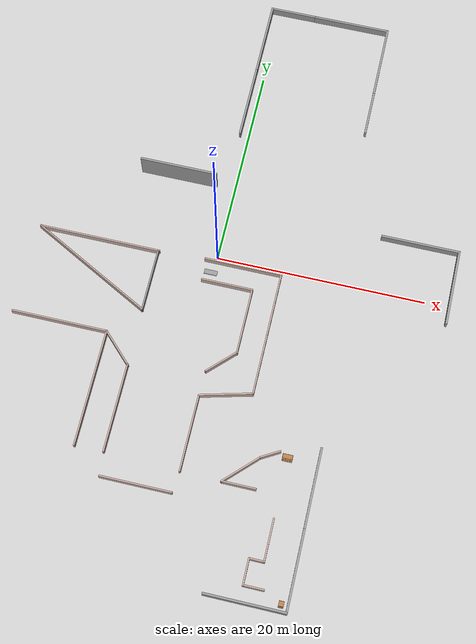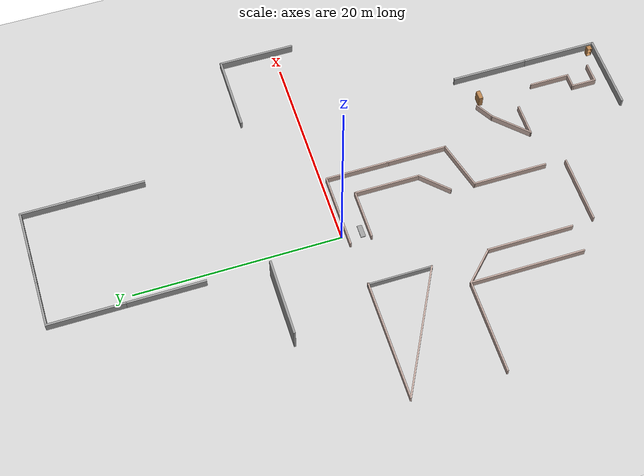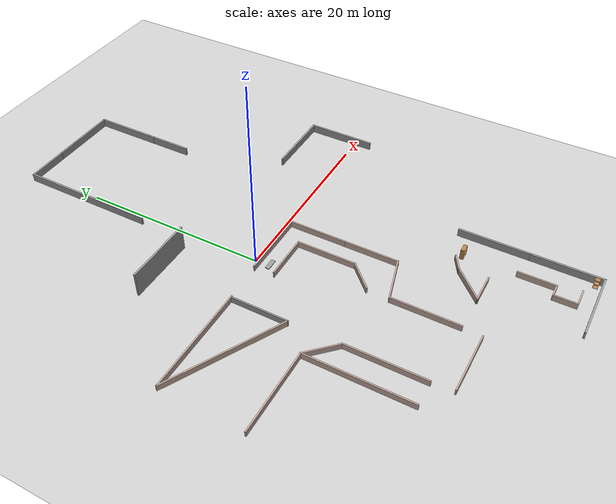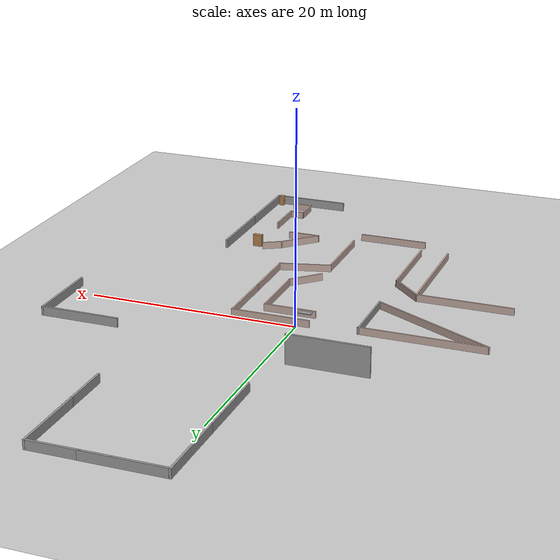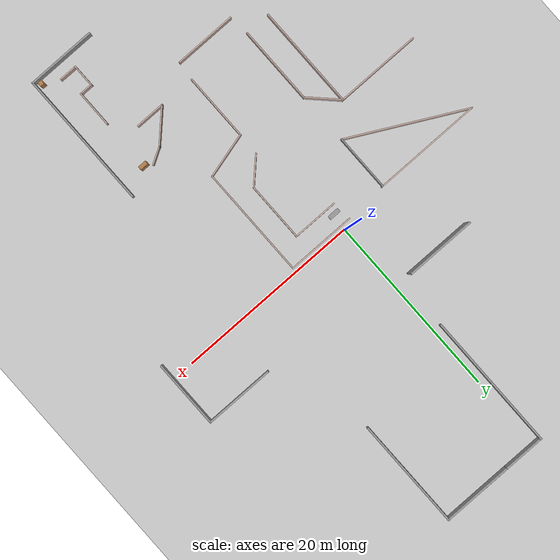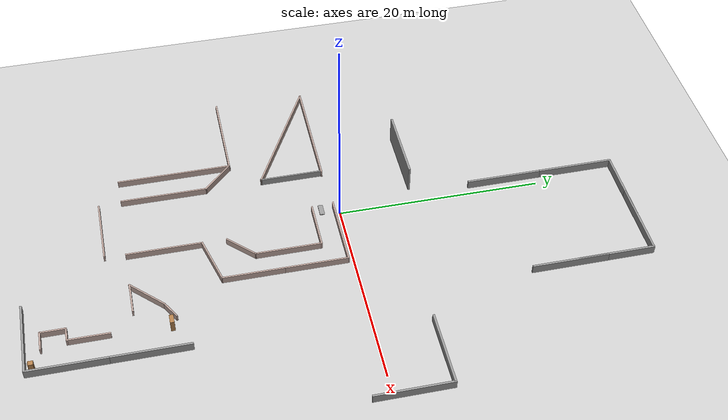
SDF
<sdf version="1.6">
 <world name="default">
  <light name="sun" type="directional">
   <pose>0 0 10 0 -0 0</pose>
   <diffuse>0.8 0.8 0.8 1</diffuse>
   <specular>0.2 0.2 0.2 1</specular>
   <attenuation>
    <range>1000</range>
    <constant>0.9</constant>
    <linear>0.01</linear>
    <quadratic>0.001</quadratic>
   </attenuation>
   <direction>-0.5 0.1 -0.9</direction>
  </light>
  <model name="ground_plane">
   <static>1</static>
   <link name="link">
    <collision name="collision">
     <geometry><plane><normal>0 0 1</normal><size>100 100</size></plane></geometry>
     <surface>
      <contact><collide_bitmask>65535</collide_bitmask></contact>
      <friction><ode><mu>100</mu><mu2>50</mu2></ode></friction>
     </surface>
    </collision>
    <visual name="visual">
     <cast_shadows>0</cast_shadows>
     <geometry><plane><normal>0 0 1</normal><size>100 100</size></plane></geometry>
     <material>
      <script><uri>file://media/materials/scripts/gazebo.material</uri><name>Gazebo/Grey</name></script>
     </material>
    </visual>
   </link>
  </model>
  <gravity>0 0 -9.8</gravity>
  <magnetic_field>6e-06 2.3e-05 -4.2e-05</magnetic_field>
  <atmosphere type="adiabatic"/>
  <physics name="default_physics" default="0" type="ode">
   <max_step_size>0.001</max_step_size>
   <real_time_factor>1</real_time_factor>
   <real_time_update_rate>1000</real_time_update_rate>
  </physics>
  <scene><ambient>0.4 0.4 0.4 1</ambient><background>0.7 0.7 0.7 1</background><shadows>1</shadows></scene>
  <audio><device>default</device></audio>
  <spherical_coordinates>
   <surface_model>EARTH_WGS84</surface_model>
   <latitude_deg>0</latitude_deg>
   <longitude_deg>0</longitude_deg>
   <elevation>0</elevation>
   <heading_deg>0</heading_deg>
  </spherical_coordinates>
  <model name="grey_wall">
   <static>1</static>
   <link name="link">
    <pose>0 0 1.4 0 -0 0</pose>
    <collision name="collision"><geometry><box><size>7.5 0.2 2.8</size></box></geometry></collision>
    <visual name="visual">
     <cast_shadows>0</cast_shadows>
     <geometry><box><size>7.5 0.2 2.8</size></box></geometry>
     <material>
      <script>
       <uri>model://grey_wall/materials/scripts</uri>
       <uri>model://grey_wall/materials/textures</uri>
       <name>vrc/grey_wall</name>
      </script>
     </material>
    </visual>
   </link>
   <pose>-5.54748 7.36439 0 0 -0 0</pose>
  </model>
  <model name="grey_wall_0">
   <static>1</static>
   <link name="link">
    <pose>0 0 1.4 0 -0 0</pose>
    <collision name="collision"><geometry><box><size>7.5 0.2 2.8</size></box></geometry></collision>
    <visual name="visual">
     <cast_shadows>0</cast_shadows>
     <geometry><box><size>7.5 0.2 2.8</size></box></geometry>
     <material>
      <script>
       <uri>model://grey_wall/materials/scripts</uri>
       <uri>model://grey_wall/materials/textures</uri>
       <name>vrc/grey_wall</name>
      </script>
     </material>
    </visual>
   </link>
   <pose>22.2757 1.85018 -2.00389 0 -0 1.57095</pose>
  </model>
  <model name="grey_wall_1">
   <static>1</static>
   <link name="link">
    <pose>0 0 1.4 0 -0 0</pose>
    <collision name="collision"><geometry><box><size>7.5 0.2 2.8</size></box></geometry></collision>
    <visual name="visual">
     <cast_shadows>0</cast_shadows>
     <geometry><box><size>7.5 0.2 2.8</size></box></geometry>
     <material>
      <script>
       <uri>model://grey_wall/materials/scripts</uri>
       <uri>model://grey_wall/materials/textures</uri>
       <name>vrc/grey_wall</name>
      </script>
     </material>
    </visual>
   </link>
   <pose>18.513 5.49557 -2.00251 0 -0 0</pose>
  </model>
  <model name="grey_wall_0_clone">
   <static>1</static>
   <link name="link">
    <pose>0 0 1.4 0 -0 0</pose>
    <collision name="collision"><geometry><box><size>7.5 0.2 2.8</size></box></geometry></collision>
    <visual name="visual">
     <cast_shadows>0</cast_shadows>
     <geometry><box><size>7.5 0.2 2.8</size></box></geometry>
     <material>
      <script>
       <uri>model://grey_wall/materials/scripts</uri>
       <uri>model://grey_wall/materials/textures</uri>
       <name>vrc/grey_wall</name>
      </script>
     </material>
    </visual>
   </link>
   <pose>11.1137 19.7868 -2.00389 0 -0 1.57095</pose>
  </model>
  <model name="grey_wall_0_clone_0">
   <static>1</static>
   <link name="link">
    <pose>0 0 1.4 0 -0 0</pose>
    <collision name="collision"><geometry><box><size>7.5 0.2 2.8</size></box></geometry></collision>
    <visual name="visual">
     <cast_shadows>0</cast_shadows>
     <geometry><box><size>7.5 0.2 2.8</size></box></geometry>
     <material>
      <script>
       <uri>model://grey_wall/materials/scripts</uri>
       <uri>model://grey_wall/materials/textures</uri>
       <name>vrc/grey_wall</name>
      </script>
     </material>
    </visual>
   </link>
   <pose>11.1029 24.3604 -2.00389 0 -0 1.57095</pose>
  </model>
  <model name="grey_wall_1_clone">
   <static>1</static>
   <link name="link">
    <pose>0 0 1.4 0 -0 0</pose>
    <collision name="collision"><geometry><box><size>7.5 0.2 2.8</size></box></geometry></collision>
    <visual name="visual">
     <cast_shadows>0</cast_shadows>
     <geometry><box><size>7.5 0.2 2.8</size></box></geometry>
     <material>
      <script>
       <uri>model://grey_wall/materials/scripts</uri>
       <uri>model://grey_wall/materials/textures</uri>
       <name>vrc/grey_wall</name>
      </script>
     </material>
    </visual>
   </link>
   <pose>7.29263 28.0003 -2.00251 0 -0 0</pose>
  </model>
  <model name="grey_wall_1_clone_0">
   <static>1</static>
   <link name="link">
    <pose>0 0 1.4 0 -0 0</pose>
    <collision name="collision"><geometry><box><size>7.5 0.2 2.8</size></box></geometry></collision>
    <visual name="visual">
     <cast_shadows>0</cast_shadows>
     <geometry><box><size>7.5 0.2 2.8</size></box></geometry>
     <material>
      <script>
       <uri>model://grey_wall/materials/scripts</uri>
       <uri>model://grey_wall/materials/textures</uri>
       <name>vrc/grey_wall</name>
      </script>
     </material>
    </visual>
   </link>
   <pose>2.95614 28.0056 -2.00251 0 -0 0</pose>
  </model>
  <model name="grey_wall_0_clone_0_clone">
   <static>1</static>
   <link name="link">
    <pose>0 0 1.4 0 -0 0</pose>
    <collision name="collision"><geometry><box><size>7.5 0.2 2.8</size></box></geometry></collision>
    <visual name="visual">
     <cast_shadows>0</cast_shadows>
     <geometry><box><size>7.5 0.2 2.8</size></box></geometry>
     <material>
      <script>
       <uri>model://grey_wall/materials/scripts</uri>
       <uri>model://grey_wall/materials/textures</uri>
       <name>vrc/grey_wall</name>
      </script>
     </material>
    </visual>
   </link>
   <pose>-0.89831 24.3567 -2.00389 0 -0 1.57095</pose>
  </model>
  <model name="grey_wall_0_clone_0_clone_0">
   <static>1</static>
   <link name="link">
    <pose>0 0 1.4 0 -0 0</pose>
    <collision name="collision"><geometry><box><size>7.5 0.2 2.8</size></box></geometry></collision>
    <visual name="visual">
     <cast_shadows>0</cast_shadows>
     <geometry><box><size>7.5 0.2 2.8</size></box></geometry>
     <material>
      <script>
       <uri>model://grey_wall/materials/scripts</uri>
       <uri>model://grey_wall/materials/textures</uri>
       <name>vrc/grey_wall</name>
      </script>
     </material>
    </visual>
   </link>
   <pose>-0.899004 16.9346 -2.00389 0 -0 1.57095</pose>
  </model>
  <model name="grey_wall_0_clone_0_clone_1">
   <static>1</static>
   <link name="link">
    <pose>0 0 1.4 0 -0 0</pose>
    <collision name="collision"><geometry><box><size>7.5 0.2 2.8</size></box></geometry></collision>
    <visual name="visual">
     <cast_shadows>0</cast_shadows>
     <geometry><box><size>7.5 0.2 2.8</size></box></geometry>
     <material>
      <script>
       <uri>model://grey_wall/materials/scripts</uri>
       <uri>model://grey_wall/materials/textures</uri>
       <name>vrc/grey_wall</name>
      </script>
     </material>
    </visual>
   </link>
   <pose>13.4298 -19.7932 -2.00389 0 -0 1.57095</pose>
  </model>
  <model name="grey_wall_0_clone_0_clone_2">
   <static>1</static>
   <link name="link">
    <pose>0 0 1.4 0 -0 0</pose>
    <collision name="collision"><geometry><box><size>7.5 0.2 2.8</size></box></geometry></collision>
    <visual name="visual">
     <cast_shadows>0</cast_shadows>
     <geometry><box><size>7.5 0.2 2.8</size></box></geometry>
     <material>
      <script>
       <uri>model://grey_wall/materials/scripts</uri>
       <uri>model://grey_wall/materials/textures</uri>
       <name>vrc/grey_wall</name>
      </script>
     </material>
    </visual>
   </link>
   <pose>13.4351 -27.2155 -2.00389 0 -0 1.57095</pose>
  </model>
  <model name="grey_wall_1_clone_1">
   <static>1</static>
   <link name="link">
    <pose>0 0 1.4 0 -0 0</pose>
    <collision name="collision"><geometry><box><size>7.5 0.2 2.8</size></box></geometry></collision>
    <visual name="visual">
     <cast_shadows>0</cast_shadows>
     <geometry><box><size>7.5 0.2 2.8</size></box></geometry>
     <material>
      <script>
       <uri>model://grey_wall/materials/scripts</uri>
       <uri>model://grey_wall/materials/textures</uri>
       <name>vrc/grey_wall</name>
      </script>
     </material>
    </visual>
   </link>
   <pose>9.74368 -30.8586 -2.00251 0 -0 0</pose>
  </model>
  <model name="Untitled">
   <pose>-3.12683 -14.9355 -1.87905 0 -0 0</pose>
   <link name="Floor_2">
    <collision name="Floor_2_Collision">
     <geometry><box><size>1.24623 0.468413 0.1</size></box></geometry>
     <pose>0 0 0.05 0 -0 0</pose>
    </collision>
    <visual name="Floor_2_Visual">
     <pose>0 0 0.05 0 -0 0</pose>
     <geometry><box><size>1.24623 0.468413 0.1</size></box></geometry>
     <material>
      <script><uri>file://media/materials/scripts/gazebo.material</uri><name>Gazebo/Grey</name></script>
      <ambient>1 1 1 1</ambient>
     </material>
     <meta><layer>1</layer></meta>
    </visual>
    <pose>2.9024 13.1219 2.5 0 -0 0</pose>
   </link>
   <link name="Wall_24">
    <collision name="Wall_24_Collision">
     <geometry><box><size>7.5 0.15 2.5</size></box></geometry>
     <pose>0 0 1.25 0 -0 0</pose>
    </collision>
    <visual name="Wall_24_Visual">
     <pose>0 0 1.25 0 -0 0</pose>
     <geometry><box><size>7.5 0.15 2.5</size></box></geometry>
     <material>
      <script><uri>file://media/materials/scripts/gazebo.material</uri><name>Gazebo/Grey</name></script>
      <ambient>0.760784 0.662745 0.627451 1</ambient>
     </material>
     <meta><layer>0</layer></meta>
    </visual>
    <pose>5.74883 14.4417 0 0 -0 0</pose>
   </link>
   <link name="Wall_25">
    <collision name="Wall_25_Collision">
     <geometry><box><size>6.17802 0.15 2.5</size></box></geometry>
     <pose>0 0 1.25 0 -0 0</pose>
    </collision>
    <visual name="Wall_25_Visual">
     <pose>0 0 1.25 0 -0 0</pose>
     <geometry><box><size>6.17802 0.15 2.5</size></box></geometry>
     <material>
      <script><uri>file://media/materials/scripts/gazebo.material</uri><name>Gazebo/Grey</name></script>
      <ambient>0.760784 0.662745 0.627451 1</ambient>
     </material>
     <meta><layer>0</layer></meta>
    </visual>
    <pose>9.42383 11.3207 0 0 -0 -1.5708</pose>
   </link>
   <link name="Wall_28">
    <collision name="Wall_28_Collision">
     <geometry><box><size>6 0.15 2.5</size></box></geometry>
     <pose>0 0 1.25 0 -0 0</pose>
    </collision>
    <visual name="Wall_28_Visual">
     <pose>0 0 1.25 0 -0 0</pose>
     <geometry><box><size>6 0.15 2.5</size></box></geometry>
     <material>
      <script><uri>file://media/materials/scripts/gazebo.material</uri><name>Gazebo/Grey</name></script>
      <ambient>0.760784 0.662745 0.627451 1</ambient>
     </material>
     <meta><layer>0</layer></meta>
    </visual>
    <pose>9.42383 5.38164 0 0 -0 -1.5708</pose>
   </link>
   <link name="Wall_29">
    <collision name="Wall_29_Collision">
     <geometry><box><size>5.07157 0.15 2.5</size></box></geometry>
     <pose>0 0 1.25 0 -0 0</pose>
    </collision>
    <visual name="Wall_29_Visual">
     <pose>0 0 1.25 0 -0 0</pose>
     <geometry><box><size>5.07157 0.15 2.5</size></box></geometry>
     <material>
      <script><uri>file://media/materials/scripts/gazebo.material</uri><name>Gazebo/Grey</name></script>
      <ambient>0.760784 0.662745 0.627451 1</ambient>
     </material>
     <meta><layer>0</layer></meta>
    </visual>
    <pose>7.04157 1.83996 0 0 -0 -2.88829</pose>
   </link>
   <link name="Wall_31">
    <collision name="Wall_31_Collision">
     <geometry><box><size>2 0.15 2.5</size></box></geometry>
     <pose>0 0 1.25 0 -0 0</pose>
    </collision>
    <visual name="Wall_31_Visual">
     <pose>0 0 1.25 0 -0 0</pose>
     <geometry><box><size>2 0.15 2.5</size></box></geometry>
     <material>
      <script><uri>file://media/materials/scripts/gazebo.material</uri><name>Gazebo/Grey</name></script>
      <ambient>0.760784 0.662745 0.627451 1</ambient>
     </material>
     <meta><layer>0</layer></meta>
    </visual>
    <pose>12.192 -2.67756 0 0 -0 0.523599</pose>
   </link>
   <link name="Wall_33">
    <collision name="Wall_33_Collision">
     <geometry><box><size>4.25 0.15 2.5</size></box></geometry>
     <pose>0 0 1.25 0 -0 0</pose>
    </collision>
    <visual name="Wall_33_Visual">
     <pose>0 0 1.25 0 -0 0</pose>
     <geometry><box><size>4.25 0.15 2.5</size></box></geometry>
     <material>
      <script><uri>file://media/materials/scripts/gazebo.material</uri><name>Gazebo/Grey</name></script>
      <ambient>0.760784 0.662745 0.627451 1</ambient>
     </material>
     <meta><layer>0</layer></meta>
    </visual>
    <pose>9.94138 -4.58963 0 0 -0 -2.35619</pose>
   </link>
   <link name="Wall_34">
    <collision name="Wall_34_Collision">
     <geometry><box><size>3.25 0.15 2.5</size></box></geometry>
     <pose>0 0 1.25 0 -0 0</pose>
    </collision>
    <visual name="Wall_34_Visual">
     <pose>0 0 1.25 0 -0 0</pose>
     <geometry><box><size>3.25 0.15 2.5</size></box></geometry>
     <material>
      <script><uri>file://media/materials/scripts/gazebo.material</uri><name>Gazebo/Grey</name></script>
      <ambient>0.760784 0.662745 0.627451 1</ambient>
     </material>
     <meta><layer>0</layer></meta>
    </visual>
    <pose>10.0418 -6.0392 0 0 -0 0</pose>
   </link>
   <link name="Wall_38">
    <collision name="Wall_38_Collision">
     <geometry><box><size>7.25 0.15 2.5</size></box></geometry>
     <pose>0 0 1.25 0 -0 0</pose>
    </collision>
    <visual name="Wall_38_Visual">
     <pose>0 0 1.25 0 -0 0</pose>
     <geometry><box><size>7.25 0.15 2.5</size></box></geometry>
     <material>
      <script><uri>file://media/materials/scripts/gazebo.material</uri><name>Gazebo/Grey</name></script>
      <ambient>0.760784 0.662745 0.627451 1</ambient>
     </material>
     <meta><layer>0</layer></meta>
    </visual>
    <pose>4.65931 -2.43372 0 0 -0 -1.5708</pose>
   </link>
   <link name="Wall_41">
    <collision name="Wall_41_Collision">
     <geometry><box><size>8.5 0.15 2.5</size></box></geometry>
     <pose>0 0 1.25 0 -0 0</pose>
    </collision>
    <visual name="Wall_41_Visual">
     <pose>0 0 1.25 0 -0 0</pose>
     <geometry><box><size>8.5 0.15 2.5</size></box></geometry>
     <material>
      <script><uri>file://media/materials/scripts/gazebo.material</uri><name>Gazebo/Grey</name></script>
      <ambient>0.760784 0.662745 0.627451 1</ambient>
     </material>
     <meta><layer>0</layer></meta>
    </visual>
    <pose>-2.42244 -1.61675 0 0 -0 1.5708</pose>
   </link>
   <link name="Wall_44">
    <collision name="Wall_44_Collision">
     <geometry><box><size>4 0.15 2.5</size></box></geometry>
     <pose>0 0 1.25 0 -0 0</pose>
    </collision>
    <visual name="Wall_44_Visual">
     <pose>0 0 1.25 0 -0 0</pose>
     <geometry><box><size>4 0.15 2.5</size></box></geometry>
     <material>
      <script><uri>file://media/materials/scripts/gazebo.material</uri><name>Gazebo/Grey</name></script>
      <ambient>0.760784 0.662745 0.627451 1</ambient>
     </material>
     <meta><layer>0</layer></meta>
    </visual>
    <pose>-3.78362 3.91943 0 0 -0 2.35619</pose>
   </link>
   <link name="Wall_45">
    <collision name="Wall_45_Collision">
     <geometry><box><size>9.25 0.15 2.5</size></box></geometry>
     <pose>0 0 1.25 0 -0 0</pose>
    </collision>
    <visual name="Wall_45_Visual">
     <pose>0 0 1.25 0 -0 0</pose>
     <geometry><box><size>9.25 0.15 2.5</size></box></geometry>
     <material>
      <script><uri>file://media/materials/scripts/gazebo.material</uri><name>Gazebo/Grey</name></script>
      <ambient>0.760784 0.662745 0.627451 1</ambient>
     </material>
     <meta><layer>0</layer></meta>
    </visual>
    <pose>-9.69481 5.28061 0 0 -0 3.14159</pose>
   </link>
   <link name="Wall_49">
    <collision name="Wall_49_Collision">
     <geometry><box><size>6.25 0.15 2.5</size></box></geometry>
     <pose>0 0 1.25 0 -0 0</pose>
    </collision>
    <visual name="Wall_49_Visual">
     <pose>0 0 1.25 0 -0 0</pose>
     <geometry><box><size>6.25 0.15 2.5</size></box></geometry>
     <material>
      <script><uri>file://media/materials/scripts/gazebo.material</uri><name>Gazebo/Grey</name></script>
      <ambient>1 1 1 1</ambient>
     </material>
     <meta><layer>0</layer></meta>
    </visual>
    <pose>-2.49914 11.1627 0 0 -0 1.5708</pose>
   </link>
   <link name="Wall_50">
    <collision name="Wall_50_Collision">
     <geometry><box><size>11.75 0.15 2.5</size></box></geometry>
     <pose>0 0 1.25 0 -0 0</pose>
    </collision>
    <visual name="Wall_50_Visual">
     <pose>0 0 1.25 0 -0 0</pose>
     <geometry><box><size>11.75 0.15 2.5</size></box></geometry>
     <material>
      <script><uri>file://media/materials/scripts/gazebo.material</uri><name>Gazebo/Grey</name></script>
      <ambient>0.760784 0.662745 0.627451 1</ambient>
     </material>
     <meta><layer>0</layer></meta>
    </visual>
    <pose>-8.21869 14.2127 0 0 -0 3.14159</pose>
   </link>
   <link name="Wall_51">
    <collision name="Wall_51_Collision">
     <geometry><box><size>13.2561 0.15 2.5</size></box></geometry>
     <pose>0 0 1.25 0 -0 0</pose>
    </collision>
    <visual name="Wall_51_Visual">
     <pose>0 0 1.25 0 -0 0</pose>
     <geometry><box><size>13.2561 0.15 2.5</size></box></geometry>
     <material>
      <script><uri>file://media/materials/scripts/gazebo.material</uri><name>Gazebo/Grey</name></script>
      <ambient>0.760784 0.662745 0.627451 1</ambient>
     </material>
     <meta><layer>0</layer></meta>
    </visual>
    <pose>-8.29914 11.1627 0 0 -0 -0.484123</pose>
   </link>
   <link name="Wall_52">
    <collision name="Wall_52_Collision">
     <geometry><box><size>6.25 0.15 2.5</size></box></geometry>
     <pose>0 0 1.25 0 -0 0</pose>
    </collision>
    <visual name="Wall_52_Visual">
     <pose>0 0 1.25 0 -0 0</pose>
     <geometry><box><size>6.25 0.15 2.5</size></box></geometry>
     <material>
      <script><uri>file://media/materials/scripts/gazebo.material</uri><name>Gazebo/Grey</name></script>
      <ambient>0.760784 0.662745 0.627451 1</ambient>
     </material>
     <meta><layer>0</layer></meta>
    </visual>
    <pose>-2.49914 11.1627 0 0 -0 1.5708</pose>
   </link>
   <link name="Wall_54">
    <collision name="Wall_54_Collision">
     <geometry><box><size>3.5 0.15 2.5</size></box></geometry>
     <pose>0 0 1.25 0 -0 0</pose>
    </collision>
    <visual name="Wall_54_Visual">
     <pose>0 0 1.25 0 -0 0</pose>
     <geometry><box><size>3.5 0.15 2.5</size></box></geometry>
     <material>
      <script><uri>file://media/materials/scripts/gazebo.material</uri><name>Gazebo/Grey</name></script>
      <ambient>0.760784 0.662745 0.627451 1</ambient>
     </material>
     <meta><layer>0</layer></meta>
    </visual>
    <pose>5.90955 4.79167 0 0 -0 0.785398</pose>
   </link>
   <link name="Wall_55">
    <collision name="Wall_55_Collision">
     <geometry><box><size>6.5 0.15 2.5</size></box></geometry>
     <pose>0 0 1.25 0 -0 0</pose>
    </collision>
    <visual name="Wall_55_Visual">
     <pose>0 0 1.25 0 -0 0</pose>
     <geometry><box><size>6.5 0.15 2.5</size></box></geometry>
     <material>
      <script><uri>file://media/materials/scripts/gazebo.material</uri><name>Gazebo/Grey</name></script>
      <ambient>0.760784 0.662745 0.627451 1</ambient>
     </material>
     <meta><layer>0</layer></meta>
    </visual>
    <pose>7.09395 9.15108 0 0 -0 1.5708</pose>
   </link>
   <link name="Wall_56">
    <collision name="Wall_56_Collision">
     <geometry><box><size>5 0.15 2.5</size></box></geometry>
     <pose>0 0 1.25 0 -0 0</pose>
    </collision>
    <visual name="Wall_56_Visual">
     <pose>0 0 1.25 0 -0 0</pose>
     <geometry><box><size>5 0.15 2.5</size></box></geometry>
     <material>
      <script><uri>file://media/materials/scripts/gazebo.material</uri><name>Gazebo/Grey</name></script>
      <ambient>0.760784 0.662745 0.627451 1</ambient>
     </material>
     <meta><layer>0</layer></meta>
    </visual>
    <pose>4.66895 12.3261 0 0 -0 3.14159</pose>
   </link>
   <link name="Wall_59">
    <collision name="Wall_59_Collision">
     <geometry><box><size>11.25 0.15 2.5</size></box></geometry>
     <pose>0 0 1.25 0 -0 0</pose>
    </collision>
    <visual name="Wall_59_Visual">
     <pose>0 0 1.25 0 -0 0</pose>
     <geometry><box><size>11.25 0.15 2.5</size></box></geometry>
     <material>
      <script><uri>file://media/materials/scripts/gazebo.material</uri><name>Gazebo/Grey</name></script>
      <ambient>0.760784 0.662745 0.627451 1</ambient>
     </material>
     <meta><layer>0</layer></meta>
    </visual>
    <pose>-5.14481 -0.269386 0 0 -0 -1.5708</pose>
   </link>
   <link name="Wall_61">
    <collision name="Wall_61_Collision">
     <geometry><box><size>4 0.15 2.5</size></box></geometry>
     <pose>0 0 1.25 0 -0 0</pose>
    </collision>
    <visual name="Wall_61_Visual">
     <pose>0 0 1.25 0 -0 0</pose>
     <geometry><box><size>4 0.15 2.5</size></box></geometry>
     <material>
      <script><uri>file://media/materials/scripts/gazebo.material</uri><name>Gazebo/Grey</name></script>
      <ambient>0.760784 0.662745 0.627451 1</ambient>
     </material>
     <meta><layer>0</layer></meta>
    </visual>
    <pose>13.7448 -10.1667 0 0 -0 -1.5708</pose>
   </link>
   <link name="Wall_62">
    <collision name="Wall_62_Collision">
     <geometry><box><size>1.5 0.15 2.5</size></box></geometry>
     <pose>0 0 1.25 0 -0 0</pose>
    </collision>
    <visual name="Wall_62_Visual">
     <pose>0 0 1.25 0 -0 0</pose>
     <geometry><box><size>1.5 0.15 2.5</size></box></geometry>
     <material>
      <script><uri>file://media/materials/scripts/gazebo.material</uri><name>Gazebo/Grey</name></script>
      <ambient>0.760784 0.662745 0.627451 1</ambient>
     </material>
     <meta><layer>0</layer></meta>
    </visual>
    <pose>13.0698 -12.0917 0 0 -0 3.14159</pose>
   </link>
   <link name="Wall_63">
    <collision name="Wall_63_Collision">
     <geometry><box><size>2.5 0.15 2.5</size></box></geometry>
     <pose>0 0 1.25 0 -0 0</pose>
    </collision>
    <visual name="Wall_63_Visual">
     <pose>0 0 1.25 0 -0 0</pose>
     <geometry><box><size>2.5 0.15 2.5</size></box></geometry>
     <material>
      <script><uri>file://media/materials/scripts/gazebo.material</uri><name>Gazebo/Grey</name></script>
      <ambient>0.760784 0.662745 0.627451 1</ambient>
     </material>
     <meta><layer>0</layer></meta>
    </visual>
    <pose>12.3948 -13.2667 0 0 -0 -1.5708</pose>
   </link>
   <link name="Wall_64">
    <collision name="Wall_64_Collision">
     <geometry><box><size>2 0.15 2.5</size></box></geometry>
     <pose>0 0 1.25 0 -0 0</pose>
    </collision>
    <visual name="Wall_64_Visual">
     <pose>0 0 1.25 0 -0 0</pose>
     <geometry><box><size>2 0.15 2.5</size></box></geometry>
     <material>
      <script><uri>file://media/materials/scripts/gazebo.material</uri><name>Gazebo/Grey</name></script>
      <ambient>0.760784 0.662745 0.627451 1</ambient>
     </material>
     <meta><layer>0</layer></meta>
    </visual>
    <pose>13.3198 -14.4417 0 0 -0 0</pose>
   </link>
   <link name="Wall_67">
    <collision name="Wall_67_Collision">
     <geometry><box><size>6.75 0.15 2.5</size></box></geometry>
     <pose>0 0 1.25 0 -0 0</pose>
    </collision>
    <visual name="Wall_67_Visual">
     <pose>0 0 1.25 0 -0 0</pose>
     <geometry><box><size>6.75 0.15 2.5</size></box></geometry>
     <material>
      <script><uri>file://media/materials/scripts/gazebo.material</uri><name>Gazebo/Grey</name></script>
      <ambient>0.760784 0.662745 0.627451 1</ambient>
     </material>
     <meta><layer>0</layer></meta>
    </visual>
    <pose>1.11813 -8.02644 0 0 -0 0</pose>
   </link>
   <static>1</static>
  </model>
  <model name="bookshelf">
   <static>1</static>
   <link name="link">
    <inertial><mass>1</mass></inertial>
    <collision name="back">
     <pose>0 0.005 0.6 0 -0 0</pose>
     <geometry><box><size>0.9 0.01 1.2</size></box></geometry>
    </collision>
    <visual name="visual1">
     <pose>0 0.005 0.6 0 -0 0</pose>
     <geometry><box><size>0.9 0.01 1.2</size></box></geometry>
     <material>
      <script><uri>file://media/materials/scripts/gazebo.material</uri><name>Gazebo/Wood</name></script>
     </material>
    </visual>
    <collision name="left_side">
     <pose>0.45 -0.195 0.6 0 -0 0</pose>
     <geometry><box><size>0.02 0.4 1.2</size></box></geometry>
    </collision>
    <visual name="visual2">
     <pose>0.45 -0.195 0.6 0 -0 0</pose>
     <geometry><box><size>0.02 0.4 1.2</size></box></geometry>
     <material>
      <script><uri>file://media/materials/scripts/gazebo.material</uri><name>Gazebo/Wood</name></script>
     </material>
    </visual>
    <collision name="right_side">
     <pose>-0.45 -0.195 0.6 0 -0 0</pose>
     <geometry><box><size>0.02 0.4 1.2</size></box></geometry>
    </collision>
    <visual name="visual3">
     <pose>-0.45 -0.195 0.6 0 -0 0</pose>
     <geometry><box><size>0.02 0.4 1.2</size></box></geometry>
     <material>
      <script><uri>file://media/materials/scripts/gazebo.material</uri><name>Gazebo/Wood</name></script>
     </material>
    </visual>
    <collision name="bottom">
     <pose>0 -0.195 0.03 0 -0 0</pose>
     <geometry><box><size>0.88 0.4 0.06</size></box></geometry>
    </collision>
    <visual name="visual4">
     <pose>0 -0.195 0.03 0 -0 0</pose>
     <geometry><box><size>0.88 0.4 0.06</size></box></geometry>
     <material>
      <script><uri>file://media/materials/scripts/gazebo.material</uri><name>Gazebo/Wood</name></script>
     </material>
    </visual>
    <collision name="top">
     <pose>0 -0.195 1.19 0 -0 0</pose>
     <geometry><box><size>0.88 0.4 0.02</size></box></geometry>
    </collision>
    <visual name="visual5">
     <pose>0 -0.195 1.19 0 -0 0</pose>
     <geometry><box><size>0.88 0.4 0.02</size></box></geometry>
     <material>
      <script><uri>file://media/materials/scripts/gazebo.material</uri><name>Gazebo/Wood</name></script>
     </material>
    </visual>
    <collision name="low_shelf">
     <pose>0 -0.195 0.43 0 -0 0</pose>
     <geometry><box><size>0.88 0.4 0.02</size></box></geometry>
    </collision>
    <visual name="visual6">
     <pose>0 -0.195 0.43 0 -0 0</pose>
     <geometry><box><size>0.88 0.4 0.02</size></box></geometry>
     <material>
      <script><uri>file://media/materials/scripts/gazebo.material</uri><name>Gazebo/Wood</name></script>
     </material>
    </visual>
    <collision name="high_shelf">
     <pose>0 -0.195 0.8 0 -0 0</pose>
     <geometry><box><size>0.88 0.4 0.02</size></box></geometry>
    </collision>
    <visual name="visual7">
     <pose>0 -0.195 0.8 0 -0 0</pose>
     <geometry><box><size>0.88 0.4 0.02</size></box></geometry>
     <material>
      <script><uri>file://media/materials/scripts/gazebo.material</uri><name>Gazebo/Wood</name></script>
     </material>
    </visual>
   </link>
   <pose>10.6308 -17.4358 0 0 -0 0</pose>
  </model>
  <model name="cabinet">
   <static>1</static>
   <link name="cabinet_bottom_plate">
    <inertial>
     <pose>0 0 -1 0 -0 0</pose>
     <inertia><ixx>2.05</ixx><ixy>0</ixy><ixz>0</ixz><iyy>2.05</iyy><iyz>0</iyz><izz>2.05</izz></inertia>
     <mass>25</mass>
    </inertial>
    <collision name="cabinet_bottom_plate_geom">
     <pose>0 0 0.01 0 -0 0</pose>
     <geometry><box><size>0.45 0.45 0.02</size></box></geometry>
    </collision>
    <visual name="cabinet_bottom_plate_geom_visual">
     <pose>0 0 0.01 0 -0 0</pose>
     <geometry><box><size>0.45 0.45 0.02</size></box></geometry>
     <material>
      <script><uri>file://media/materials/scripts/gazebo.material</uri><name>Gazebo/Wood</name></script>
     </material>
    </visual>
    <collision name="cabinet_bottom_plate_geom_cabinet_back_plate">
     <pose>0.235 0 0.51 0 -0 0</pose>
     <geometry><box><size>0.02 0.45 1.02</size></box></geometry>
    </collision>
    <visual name="cabinet_bottom_plate_geom_cabinet_back_plate_visual">
     <pose>0.235 0 0.51 0 -0 0</pose>
     <geometry><box><size>0.02 0.45 1.02</size></box></geometry>
     <material>
      <script><uri>file://media/materials/scripts/gazebo.material</uri><name>Gazebo/Wood</name></script>
     </material>
    </visual>
    <collision name="cabinet_bottom_plate_geom_cabinet_left_plate">
     <pose>0 0.235 0.51 0 -0 0</pose>
     <geometry><box><size>0.45 0.02 1.02</size></box></geometry>
    </collision>
    <visual name="cabinet_bottom_plate_geom_cabinet_left_plate_visual">
     <pose>0 0.235 0.51 0 -0 0</pose>
     <geometry><box><size>0.45 0.02 1.02</size></box></geometry>
     <material>
      <script><uri>file://media/materials/scripts/gazebo.material</uri><name>Gazebo/Wood</name></script>
     </material>
    </visual>
    <collision name="cabinet_bottom_plate_geom_cabinet_middle_plate">
     <pose>0 0 0.51 0 -0 0</pose>
     <geometry><box><size>0.45 0.45 0.02</size></box></geometry>
    </collision>
    <visual name="cabinet_bottom_plate_geom_cabinet_middle_plate_visual">
     <pose>0 0 0.51 0 -0 0</pose>
     <geometry><box><size>0.45 0.45 0.02</size></box></geometry>
     <material>
      <script><uri>file://media/materials/scripts/gazebo.material</uri><name>Gazebo/Wood</name></script>
     </material>
    </visual>
    <collision name="cabinet_bottom_plate_geom_cabinet_right_plate">
     <pose>0 -0.235 0.51 0 -0 0</pose>
     <geometry><box><size>0.45 0.02 1.02</size></box></geometry>
    </collision>
    <visual name="cabinet_bottom_plate_geom_cabinet_right_plate_visual">
     <pose>0 -0.235 0.51 0 -0 0</pose>
     <geometry><box><size>0.45 0.02 1.02</size></box></geometry>
     <material>
      <script><uri>file://media/materials/scripts/gazebo.material</uri><name>Gazebo/Wood</name></script>
     </material>
    </visual>
    <collision name="cabinet_bottom_plate_geom_cabinet_top_plate">
     <pose>0 0 1.01 0 -0 0</pose>
     <geometry><box><size>0.45 0.45 0.02</size></box></geometry>
    </collision>
    <visual name="cabinet_bottom_plate_geom_cabinet_top_plate_visual">
     <pose>0 0 1.01 0 -0 0</pose>
     <geometry><box><size>0.45 0.45 0.02</size></box></geometry>
     <material>
      <script><uri>file://media/materials/scripts/gazebo.material</uri><name>Gazebo/Wood</name></script>
     </material>
    </visual>
   </link>
   <pose>12.8252 -30.2352 0 0 -0 0</pose>
  </model>
 </world>
</sdf>
